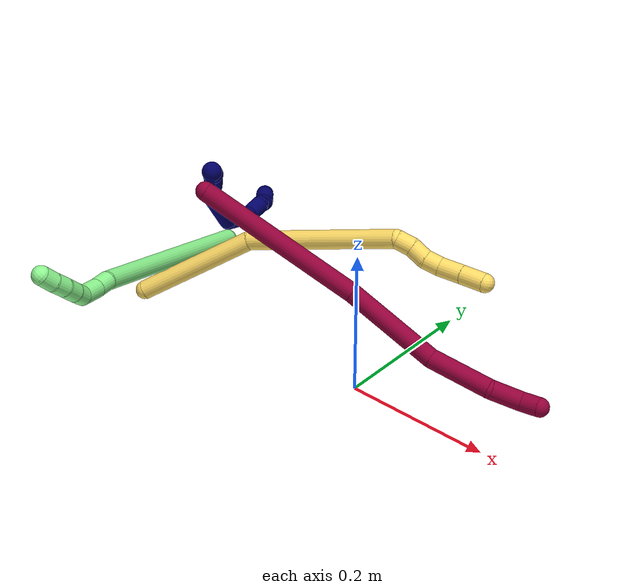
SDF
<sdf version="1.7">
 <world name="default">
  <model name="5">
   <static>0</static>
   <link name="5">
    <collision name="collision-cylinder-e_1_1_4">
     <pose>0.047104 0.058043 -0.031498 -2.06799 0.619586 -0.98701</pose>
     <geometry><cylinder><radius>0.0125</radius><length>0.162233</length></cylinder></geometry>
     <surface>
      <friction><ode><mu>1.16</mu><mu2>1.16</mu2><slip1>0</slip1><slip2>0</slip2></ode></friction>
      <contact><ode><kp>1e+06</kp><kd>1</kd><max_vel>0</max_vel><min_depth>0.001</min_depth></ode></contact>
     </surface>
    </collision>
    <visual name="visual-cylinder-e_1_1_4">
     <pose>0.047104 0.058043 -0.031498 -2.06799 0.619586 -0.98701</pose>
     <geometry><cylinder><radius>0.0125</radius><length>0.162233</length></cylinder></geometry>
     <material><ambient>1 0.858824 0.4 1</ambient></material>
    </visual>
    <collision name="collision-cylinder-e_2_4_5">
     <pose>0.182998 0.157939 -0.098223 -2.27045 1.01861 -1.75209</pose>
     <geometry><cylinder><radius>0.0125</radius><length>0.208578</length></cylinder></geometry>
     <surface>
      <friction><ode><mu>1.16</mu><mu2>1.16</mu2><slip1>0</slip1><slip2>0</slip2></ode></friction>
      <contact><ode><kp>1e+06</kp><kd>1</kd><max_vel>0</max_vel><min_depth>0.001</min_depth></ode></contact>
     </surface>
    </collision>
    <visual name="visual-cylinder-e_2_4_5">
     <pose>0.182998 0.157939 -0.098223 -2.27045 1.01861 -1.75209</pose>
     <geometry><cylinder><radius>0.0125</radius><length>0.208578</length></cylinder></geometry>
     <material><ambient>1 0.858824 0.4 1</ambient></material>
    </visual>
    <collision name="collision-cylinder-e_3_5_6">
     <pose>0.280124 0.198207 -0.140764 2.92828 0.839322 2.67056</pose>
     <geometry><cylinder><radius>0.0125</radius><length>0.022407</length></cylinder></geometry>
     <surface>
      <friction><ode><mu>1.16</mu><mu2>1.16</mu2><slip1>0</slip1><slip2>0</slip2></ode></friction>
      <contact><ode><kp>1e+06</kp><kd>1</kd><max_vel>0</max_vel><min_depth>0.001</min_depth></ode></contact>
     </surface>
    </collision>
    <visual name="visual-cylinder-e_3_5_6">
     <pose>0.280124 0.198207 -0.140764 2.92828 0.839322 2.67056</pose>
     <geometry><cylinder><radius>0.0125</radius><length>0.022407</length></cylinder></geometry>
     <material><ambient>1 0.858824 0.4 1</ambient></material>
    </visual>
    <collision name="collision-cylinder-e_4_6_7">
     <pose>0.29741 0.19252 -0.153304 2.47605 0.932077 1.93751</pose>
     <geometry><cylinder><radius>0.0125</radius><length>0.022291</length></cylinder></geometry>
     <surface>
      <friction><ode><mu>1.16</mu><mu2>1.16</mu2><slip1>0</slip1><slip2>0</slip2></ode></friction>
      <contact><ode><kp>1e+06</kp><kd>1</kd><max_vel>0</max_vel><min_depth>0.001</min_depth></ode></contact>
     </surface>
    </collision>
    <visual name="visual-cylinder-e_4_6_7">
     <pose>0.29741 0.19252 -0.153304 2.47605 0.932077 1.93751</pose>
     <geometry><cylinder><radius>0.0125</radius><length>0.022291</length></cylinder></geometry>
     <material><ambient>1 0.858824 0.4 1</ambient></material>
    </visual>
    <collision name="collision-cylinder-e_5_7_8">
     <pose>0.314755 0.187227 -0.164863 2.95582 0.916261 2.76818</pose>
     <geometry><cylinder><radius>0.0125</radius><length>0.021168</length></cylinder></geometry>
     <surface>
      <friction><ode><mu>1.16</mu><mu2>1.16</mu2><slip1>0</slip1><slip2>0</slip2></ode></friction>
      <contact><ode><kp>1e+06</kp><kd>1</kd><max_vel>0</max_vel><min_depth>0.001</min_depth></ode></contact>
     </surface>
    </collision>
    <visual name="visual-cylinder-e_5_7_8">
     <pose>0.314755 0.187227 -0.164863 2.95582 0.916261 2.76818</pose>
     <geometry><cylinder><radius>0.0125</radius><length>0.021168</length></cylinder></geometry>
     <material><ambient>1 0.858824 0.4 1</ambient></material>
    </visual>
    <collision name="collision-cylinder-e_6_8_9">
     <pose>0.338096 0.187446 -0.176599 -2.88641 1.21321 -2.77595</pose>
     <geometry><cylinder><radius>0.0125</radius><length>0.031907</length></cylinder></geometry>
     <surface>
      <friction><ode><mu>1.16</mu><mu2>1.16</mu2><slip1>0</slip1><slip2>0</slip2></ode></friction>
      <contact><ode><kp>1e+06</kp><kd>1</kd><max_vel>0</max_vel><min_depth>0.001</min_depth></ode></contact>
     </surface>
    </collision>
    <visual name="visual-cylinder-e_6_8_9">
     <pose>0.338096 0.187446 -0.176599 -2.88641 1.21321 -2.77595</pose>
     <geometry><cylinder><radius>0.0125</radius><length>0.031907</length></cylinder></geometry>
     <material><ambient>1 0.858824 0.4 1</ambient></material>
    </visual>
    <collision name="collision-cylinder-e_7_9_2">
     <pose>0.367812 0.19013 -0.18719 -2.90068 1.22381 -2.79999</pose>
     <geometry><cylinder><radius>0.0125</radius><length>0.031417</length></cylinder></geometry>
     <surface>
      <friction><ode><mu>1.16</mu><mu2>1.16</mu2><slip1>0</slip1><slip2>0</slip2></ode></friction>
      <contact><ode><kp>1e+06</kp><kd>1</kd><max_vel>0</max_vel><min_depth>0.001</min_depth></ode></contact>
     </surface>
    </collision>
    <visual name="visual-cylinder-e_7_9_2">
     <pose>0.367812 0.19013 -0.18719 -2.90068 1.22381 -2.79999</pose>
     <geometry><cylinder><radius>0.0125</radius><length>0.031417</length></cylinder></geometry>
     <material><ambient>1 0.858824 0.4 1</ambient></material>
    </visual>
    <collision name="collision-sphere-2">
     <pose>0.382585 0.191405 -0.192377 0 -0 0</pose>
     <geometry><sphere><radius>0.0125</radius></sphere></geometry>
     <surface>
      <friction><ode><mu>1.16</mu><mu2>1.16</mu2><slip1>0</slip1><slip2>0</slip2></ode></friction>
      <contact><ode><kp>1e+06</kp><kd>1</kd><max_vel>0</max_vel><min_depth>0.001</min_depth></ode></contact>
     </surface>
    </collision>
    <visual name="visual-sphere-2">
     <pose>0.382585 0.191405 -0.192377 0 -0 0</pose>
     <geometry><sphere><radius>0.0125</radius></sphere></geometry>
     <material><ambient>1 0.858824 0.4 1</ambient></material>
    </visual>
    <collision name="collision-sphere-9">
     <pose>0.35304 0.188856 -0.182002 0 -0 0</pose>
     <geometry><sphere><radius>0.0125</radius></sphere></geometry>
     <surface>
      <friction><ode><mu>1.16</mu><mu2>1.16</mu2><slip1>0</slip1><slip2>0</slip2></ode></friction>
      <contact><ode><kp>1e+06</kp><kd>1</kd><max_vel>0</max_vel><min_depth>0.001</min_depth></ode></contact>
     </surface>
    </collision>
    <visual name="visual-sphere-9">
     <pose>0.35304 0.188856 -0.182002 0 -0 0</pose>
     <geometry><sphere><radius>0.0125</radius></sphere></geometry>
     <material><ambient>1 0.858824 0.4 1</ambient></material>
    </visual>
    <collision name="collision-sphere-4">
     <pose>0.094208 0.116086 -0.062995 0 -0 0</pose>
     <geometry><sphere><radius>0.0125</radius></sphere></geometry>
     <surface>
      <friction><ode><mu>1.16</mu><mu2>1.16</mu2><slip1>0</slip1><slip2>0</slip2></ode></friction>
      <contact><ode><kp>1e+06</kp><kd>1</kd><max_vel>0</max_vel><min_depth>0.001</min_depth></ode></contact>
     </surface>
    </collision>
    <visual name="visual-sphere-4">
     <pose>0.094208 0.116086 -0.062995 0 -0 0</pose>
     <geometry><sphere><radius>0.0125</radius></sphere></geometry>
     <material><ambient>1 0.858824 0.4 1</ambient></material>
    </visual>
    <collision name="collision-sphere-1">
     <geometry><sphere><radius>0.0125</radius></sphere></geometry>
     <surface>
      <friction><ode><mu>1.16</mu><mu2>1.16</mu2><slip1>0</slip1><slip2>0</slip2></ode></friction>
      <contact><ode><kp>1e+06</kp><kd>1</kd><max_vel>0</max_vel><min_depth>0.001</min_depth></ode></contact>
     </surface>
    </collision>
    <visual name="visual-sphere-1">
     <geometry><sphere><radius>0.0125</radius></sphere></geometry>
     <material><ambient>1 0.858824 0.4 1</ambient></material>
    </visual>
    <collision name="collision-sphere-8">
     <pose>0.323151 0.186037 -0.171196 0 -0 0</pose>
     <geometry><sphere><radius>0.0125</radius></sphere></geometry>
     <surface>
      <friction><ode><mu>1.16</mu><mu2>1.16</mu2><slip1>0</slip1><slip2>0</slip2></ode></friction>
      <contact><ode><kp>1e+06</kp><kd>1</kd><max_vel>0</max_vel><min_depth>0.001</min_depth></ode></contact>
     </surface>
    </collision>
    <visual name="visual-sphere-8">
     <pose>0.323151 0.186037 -0.171196 0 -0 0</pose>
     <geometry><sphere><radius>0.0125</radius></sphere></geometry>
     <material><ambient>1 0.858824 0.4 1</ambient></material>
    </visual>
    <collision name="collision-sphere-5">
     <pose>0.271787 0.199791 -0.13345 0 -0 0</pose>
     <geometry><sphere><radius>0.0125</radius></sphere></geometry>
     <surface>
      <friction><ode><mu>1.16</mu><mu2>1.16</mu2><slip1>0</slip1><slip2>0</slip2></ode></friction>
      <contact><ode><kp>1e+06</kp><kd>1</kd><max_vel>0</max_vel><min_depth>0.001</min_depth></ode></contact>
     </surface>
    </collision>
    <visual name="visual-sphere-5">
     <pose>0.271787 0.199791 -0.13345 0 -0 0</pose>
     <geometry><sphere><radius>0.0125</radius></sphere></geometry>
     <material><ambient>1 0.858824 0.4 1</ambient></material>
    </visual>
    <collision name="collision-sphere-6">
     <pose>0.288462 0.196623 -0.148078 0 -0 0</pose>
     <geometry><sphere><radius>0.0125</radius></sphere></geometry>
     <surface>
      <friction><ode><mu>1.16</mu><mu2>1.16</mu2><slip1>0</slip1><slip2>0</slip2></ode></friction>
      <contact><ode><kp>1e+06</kp><kd>1</kd><max_vel>0</max_vel><min_depth>0.001</min_depth></ode></contact>
     </surface>
    </collision>
    <visual name="visual-sphere-6">
     <pose>0.288462 0.196623 -0.148078 0 -0 0</pose>
     <geometry><sphere><radius>0.0125</radius></sphere></geometry>
     <material><ambient>1 0.858824 0.4 1</ambient></material>
    </visual>
    <collision name="collision-sphere-7">
     <pose>0.306358 0.188417 -0.158531 0 -0 0</pose>
     <geometry><sphere><radius>0.0125</radius></sphere></geometry>
     <surface>
      <friction><ode><mu>1.16</mu><mu2>1.16</mu2><slip1>0</slip1><slip2>0</slip2></ode></friction>
      <contact><ode><kp>1e+06</kp><kd>1</kd><max_vel>0</max_vel><min_depth>0.001</min_depth></ode></contact>
     </surface>
    </collision>
    <visual name="visual-sphere-7">
     <pose>0.306358 0.188417 -0.158531 0 -0 0</pose>
     <geometry><sphere><radius>0.0125</radius></sphere></geometry>
     <material><ambient>1 0.858824 0.4 1</ambient></material>
    </visual>
    <inertial>
     <pose>0.175446 0.134018 -0.094348 0 -0 0</pose>
     <mass>0.5</mass>
     <inertia>
      <ixx>-0.000524</ixx>
      <ixy>0</ixy>
      <ixz>0</ixz>
      <iyy>2.5e-05</iyy>
      <iyz>0</iyz>
      <izz>-0.001453</izz>
     </inertia>
    </inertial>
   </link>
   <pose>-0.308703 -0.06476 0.04713 1.14616 -0.030011 -0.187992</pose>
  </model>
  <model name="7">
   <static>0</static>
   <link name="7">
    <collision name="collision-cylinder-e_1_1_4">
     <pose>1.6e-05 0.007731 -0.0161 -2.69391 0.000903 -0.003968</pose>
     <geometry><cylinder><radius>0.0125</radius><length>0.03572</length></cylinder></geometry>
     <surface>
      <friction><ode><mu>1.16</mu><mu2>1.16</mu2><slip1>0</slip1><slip2>0</slip2></ode></friction>
      <contact><ode><kp>1e+06</kp><kd>1</kd><max_vel>0</max_vel><min_depth>0.001</min_depth></ode></contact>
     </surface>
    </collision>
    <visual name="visual-cylinder-e_1_1_4">
     <pose>1.6e-05 0.007731 -0.0161 -2.69391 0.000903 -0.003968</pose>
     <geometry><cylinder><radius>0.0125</radius><length>0.03572</length></cylinder></geometry>
     <material><ambient>0.003922 0 0.403922 1</ambient></material>
    </visual>
    <collision name="collision-cylinder-e_2_4_5">
     <pose>0.004428 0.067296 -0.131903 -2.66217 0.039096 -0.159639</pose>
     <geometry><cylinder><radius>0.0125</radius><length>0.224914</length></cylinder></geometry>
     <surface>
      <friction><ode><mu>1.16</mu><mu2>1.16</mu2><slip1>0</slip1><slip2>0</slip2></ode></friction>
      <contact><ode><kp>1e+06</kp><kd>1</kd><max_vel>0</max_vel><min_depth>0.001</min_depth></ode></contact>
     </surface>
    </collision>
    <visual name="visual-cylinder-e_2_4_5">
     <pose>0.004428 0.067296 -0.131903 -2.66217 0.039096 -0.159639</pose>
     <geometry><cylinder><radius>0.0125</radius><length>0.224914</length></cylinder></geometry>
     <material><ambient>0.003922 0 0.403922 1</ambient></material>
    </visual>
    <collision name="collision-cylinder-e_3_5_6">
     <pose>0.008305 0.13312 -0.248617 -2.45333 -0.023517 0.065599</pose>
     <geometry><cylinder><radius>0.0125</radius><length>0.044064</length></cylinder></geometry>
     <surface>
      <friction><ode><mu>1.16</mu><mu2>1.16</mu2><slip1>0</slip1><slip2>0</slip2></ode></friction>
      <contact><ode><kp>1e+06</kp><kd>1</kd><max_vel>0</max_vel><min_depth>0.001</min_depth></ode></contact>
     </surface>
    </collision>
    <visual name="visual-cylinder-e_3_5_6">
     <pose>0.008305 0.13312 -0.248617 -2.45333 -0.023517 0.065599</pose>
     <geometry><cylinder><radius>0.0125</radius><length>0.044064</length></cylinder></geometry>
     <material><ambient>0.003922 0 0.403922 1</ambient></material>
    </visual>
    <collision name="collision-cylinder-e_4_6_7">
     <pose>-0.011673 0.164551 -0.291117 -2.5415 -0.562269 1.50194</pose>
     <geometry><cylinder><radius>0.0125</radius><length>0.073007</length></cylinder></geometry>
     <surface>
      <friction><ode><mu>1.16</mu><mu2>1.16</mu2><slip1>0</slip1><slip2>0</slip2></ode></friction>
      <contact><ode><kp>1e+06</kp><kd>1</kd><max_vel>0</max_vel><min_depth>0.001</min_depth></ode></contact>
     </surface>
    </collision>
    <visual name="visual-cylinder-e_4_6_7">
     <pose>-0.011673 0.164551 -0.291117 -2.5415 -0.562269 1.50194</pose>
     <geometry><cylinder><radius>0.0125</radius><length>0.073007</length></cylinder></geometry>
     <material><ambient>0.003922 0 0.403922 1</ambient></material>
    </visual>
    <collision name="collision-cylinder-e_5_7_8">
     <pose>-0.03395 0.181205 -0.327934 3.07225 -0.243111 -2.58828</pose>
     <geometry><cylinder><radius>0.0125</radius><length>0.023402</length></cylinder></geometry>
     <surface>
      <friction><ode><mu>1.16</mu><mu2>1.16</mu2><slip1>0</slip1><slip2>0</slip2></ode></friction>
      <contact><ode><kp>1e+06</kp><kd>1</kd><max_vel>0</max_vel><min_depth>0.001</min_depth></ode></contact>
     </surface>
    </collision>
    <visual name="visual-cylinder-e_5_7_8">
     <pose>-0.03395 0.181205 -0.327934 3.07225 -0.243111 -2.58828</pose>
     <geometry><cylinder><radius>0.0125</radius><length>0.023402</length></cylinder></geometry>
     <material><ambient>0.003922 0 0.403922 1</ambient></material>
    </visual>
    <collision name="collision-cylinder-e_6_8_9">
     <pose>-0.040383 0.17864 -0.354854 3.02801 -0.226505 -2.21455</pose>
     <geometry><cylinder><radius>0.0125</radius><length>0.032205</length></cylinder></geometry>
     <surface>
      <friction><ode><mu>1.16</mu><mu2>1.16</mu2><slip1>0</slip1><slip2>0</slip2></ode></friction>
      <contact><ode><kp>1e+06</kp><kd>1</kd><max_vel>0</max_vel><min_depth>0.001</min_depth></ode></contact>
     </surface>
    </collision>
    <visual name="visual-cylinder-e_6_8_9">
     <pose>-0.040383 0.17864 -0.354854 3.02801 -0.226505 -2.21455</pose>
     <geometry><cylinder><radius>0.0125</radius><length>0.032205</length></cylinder></geometry>
     <material><ambient>0.003922 0 0.403922 1</ambient></material>
    </visual>
    <collision name="collision-cylinder-e_7_9_10">
     <pose>-0.044228 0.170318 -0.381858 2.62103 -0.017397 -0.0653</pose>
     <geometry><cylinder><radius>0.0125</radius><length>0.026316</length></cylinder></geometry>
     <surface>
      <friction><ode><mu>1.16</mu><mu2>1.16</mu2><slip1>0</slip1><slip2>0</slip2></ode></friction>
      <contact><ode><kp>1e+06</kp><kd>1</kd><max_vel>0</max_vel><min_depth>0.001</min_depth></ode></contact>
     </surface>
    </collision>
    <visual name="visual-cylinder-e_7_9_10">
     <pose>-0.044228 0.170318 -0.381858 2.62103 -0.017397 -0.0653</pose>
     <geometry><cylinder><radius>0.0125</radius><length>0.026316</length></cylinder></geometry>
     <material><ambient>0.003922 0 0.403922 1</ambient></material>
    </visual>
    <collision name="collision-cylinder-e_8_10_11">
     <pose>-0.045014 0.164962 -0.403187 -3.02241 -0.055704 0.87372</pose>
     <geometry><cylinder><radius>0.0125</radius><length>0.020004</length></cylinder></geometry>
     <surface>
      <friction><ode><mu>1.16</mu><mu2>1.16</mu2><slip1>0</slip1><slip2>0</slip2></ode></friction>
      <contact><ode><kp>1e+06</kp><kd>1</kd><max_vel>0</max_vel><min_depth>0.001</min_depth></ode></contact>
     </surface>
    </collision>
    <visual name="visual-cylinder-e_8_10_11">
     <pose>-0.045014 0.164962 -0.403187 -3.02241 -0.055704 0.87372</pose>
     <geometry><cylinder><radius>0.0125</radius><length>0.020004</length></cylinder></geometry>
     <material><ambient>0.003922 0 0.403922 1</ambient></material>
    </visual>
    <collision name="collision-cylinder-e_9_11_2">
     <pose>-0.041461 0.165152 -0.422366 3.03432 0.415486 2.64279</pose>
     <geometry><cylinder><radius>0.0125</radius><length>0.020367</length></cylinder></geometry>
     <surface>
      <friction><ode><mu>1.16</mu><mu2>1.16</mu2><slip1>0</slip1><slip2>0</slip2></ode></friction>
      <contact><ode><kp>1e+06</kp><kd>1</kd><max_vel>0</max_vel><min_depth>0.001</min_depth></ode></contact>
     </surface>
    </collision>
    <visual name="visual-cylinder-e_9_11_2">
     <pose>-0.041461 0.165152 -0.422366 3.03432 0.415486 2.64279</pose>
     <geometry><cylinder><radius>0.0125</radius><length>0.020367</length></cylinder></geometry>
     <material><ambient>0.003922 0 0.403922 1</ambient></material>
    </visual>
    <collision name="collision-sphere-2">
     <pose>-0.03735 0.164154 -0.431629 0 -0 0</pose>
     <geometry><sphere><radius>0.0125</radius></sphere></geometry>
     <surface>
      <friction><ode><mu>1.16</mu><mu2>1.16</mu2><slip1>0</slip1><slip2>0</slip2></ode></friction>
      <contact><ode><kp>1e+06</kp><kd>1</kd><max_vel>0</max_vel><min_depth>0.001</min_depth></ode></contact>
     </surface>
    </collision>
    <visual name="visual-sphere-2">
     <pose>-0.03735 0.164154 -0.431629 0 -0 0</pose>
     <geometry><sphere><radius>0.0125</radius></sphere></geometry>
     <material><ambient>0.003922 0 0.403922 1</ambient></material>
    </visual>
    <collision name="collision-sphere-11">
     <pose>-0.045571 0.166149 -0.413103 0 -0 0</pose>
     <geometry><sphere><radius>0.0125</radius></sphere></geometry>
     <surface>
      <friction><ode><mu>1.16</mu><mu2>1.16</mu2><slip1>0</slip1><slip2>0</slip2></ode></friction>
      <contact><ode><kp>1e+06</kp><kd>1</kd><max_vel>0</max_vel><min_depth>0.001</min_depth></ode></contact>
     </surface>
    </collision>
    <visual name="visual-sphere-11">
     <pose>-0.045571 0.166149 -0.413103 0 -0 0</pose>
     <geometry><sphere><radius>0.0125</radius></sphere></geometry>
     <material><ambient>0.003922 0 0.403922 1</ambient></material>
    </visual>
    <collision name="collision-sphere-10">
     <pose>-0.044457 0.163774 -0.393271 0 -0 0</pose>
     <geometry><sphere><radius>0.0125</radius></sphere></geometry>
     <surface>
      <friction><ode><mu>1.16</mu><mu2>1.16</mu2><slip1>0</slip1><slip2>0</slip2></ode></friction>
      <contact><ode><kp>1e+06</kp><kd>1</kd><max_vel>0</max_vel><min_depth>0.001</min_depth></ode></contact>
     </surface>
    </collision>
    <visual name="visual-sphere-10">
     <pose>-0.044457 0.163774 -0.393271 0 -0 0</pose>
     <geometry><sphere><radius>0.0125</radius></sphere></geometry>
     <material><ambient>0.003922 0 0.403922 1</ambient></material>
    </visual>
    <collision name="collision-sphere-9">
     <pose>-0.043999 0.176861 -0.370444 0 -0 0</pose>
     <geometry><sphere><radius>0.0125</radius></sphere></geometry>
     <surface>
      <friction><ode><mu>1.16</mu><mu2>1.16</mu2><slip1>0</slip1><slip2>0</slip2></ode></friction>
      <contact><ode><kp>1e+06</kp><kd>1</kd><max_vel>0</max_vel><min_depth>0.001</min_depth></ode></contact>
     </surface>
    </collision>
    <visual name="visual-sphere-9">
     <pose>-0.043999 0.176861 -0.370444 0 -0 0</pose>
     <geometry><sphere><radius>0.0125</radius></sphere></geometry>
     <material><ambient>0.003922 0 0.403922 1</ambient></material>
    </visual>
    <collision name="collision-sphere-4">
     <pose>3.2e-05 0.015463 -0.0322 0 -0 0</pose>
     <geometry><sphere><radius>0.0125</radius></sphere></geometry>
     <surface>
      <friction><ode><mu>1.16</mu><mu2>1.16</mu2><slip1>0</slip1><slip2>0</slip2></ode></friction>
      <contact><ode><kp>1e+06</kp><kd>1</kd><max_vel>0</max_vel><min_depth>0.001</min_depth></ode></contact>
     </surface>
    </collision>
    <visual name="visual-sphere-4">
     <pose>3.2e-05 0.015463 -0.0322 0 -0 0</pose>
     <geometry><sphere><radius>0.0125</radius></sphere></geometry>
     <material><ambient>0.003922 0 0.403922 1</ambient></material>
    </visual>
    <collision name="collision-sphere-1">
     <geometry><sphere><radius>0.0125</radius></sphere></geometry>
     <surface>
      <friction><ode><mu>1.16</mu><mu2>1.16</mu2><slip1>0</slip1><slip2>0</slip2></ode></friction>
      <contact><ode><kp>1e+06</kp><kd>1</kd><max_vel>0</max_vel><min_depth>0.001</min_depth></ode></contact>
     </surface>
    </collision>
    <visual name="visual-sphere-1">
     <geometry><sphere><radius>0.0125</radius></sphere></geometry>
     <material><ambient>0.003922 0 0.403922 1</ambient></material>
    </visual>
    <collision name="collision-sphere-8">
     <pose>-0.036767 0.180418 -0.339264 0 -0 0</pose>
     <geometry><sphere><radius>0.0125</radius></sphere></geometry>
     <surface>
      <friction><ode><mu>1.16</mu><mu2>1.16</mu2><slip1>0</slip1><slip2>0</slip2></ode></friction>
      <contact><ode><kp>1e+06</kp><kd>1</kd><max_vel>0</max_vel><min_depth>0.001</min_depth></ode></contact>
     </surface>
    </collision>
    <visual name="visual-sphere-8">
     <pose>-0.036767 0.180418 -0.339264 0 -0 0</pose>
     <geometry><sphere><radius>0.0125</radius></sphere></geometry>
     <material><ambient>0.003922 0 0.403922 1</ambient></material>
    </visual>
    <collision name="collision-sphere-5">
     <pose>0.008823 0.119129 -0.231605 0 -0 0</pose>
     <geometry><sphere><radius>0.0125</radius></sphere></geometry>
     <surface>
      <friction><ode><mu>1.16</mu><mu2>1.16</mu2><slip1>0</slip1><slip2>0</slip2></ode></friction>
      <contact><ode><kp>1e+06</kp><kd>1</kd><max_vel>0</max_vel><min_depth>0.001</min_depth></ode></contact>
     </surface>
    </collision>
    <visual name="visual-sphere-5">
     <pose>0.008823 0.119129 -0.231605 0 -0 0</pose>
     <geometry><sphere><radius>0.0125</radius></sphere></geometry>
     <material><ambient>0.003922 0 0.403922 1</ambient></material>
    </visual>
    <collision name="collision-sphere-6">
     <pose>0.007787 0.147111 -0.265629 0 -0 0</pose>
     <geometry><sphere><radius>0.0125</radius></sphere></geometry>
     <surface>
      <friction><ode><mu>1.16</mu><mu2>1.16</mu2><slip1>0</slip1><slip2>0</slip2></ode></friction>
      <contact><ode><kp>1e+06</kp><kd>1</kd><max_vel>0</max_vel><min_depth>0.001</min_depth></ode></contact>
     </surface>
    </collision>
    <visual name="visual-sphere-6">
     <pose>0.007787 0.147111 -0.265629 0 -0 0</pose>
     <geometry><sphere><radius>0.0125</radius></sphere></geometry>
     <material><ambient>0.003922 0 0.403922 1</ambient></material>
    </visual>
    <collision name="collision-sphere-7">
     <pose>-0.031134 0.181992 -0.316605 0 -0 0</pose>
     <geometry><sphere><radius>0.0125</radius></sphere></geometry>
     <surface>
      <friction><ode><mu>1.16</mu><mu2>1.16</mu2><slip1>0</slip1><slip2>0</slip2></ode></friction>
      <contact><ode><kp>1e+06</kp><kd>1</kd><max_vel>0</max_vel><min_depth>0.001</min_depth></ode></contact>
     </surface>
    </collision>
    <visual name="visual-sphere-7">
     <pose>-0.031134 0.181992 -0.316605 0 -0 0</pose>
     <geometry><sphere><radius>0.0125</radius></sphere></geometry>
     <material><ambient>0.003922 0 0.403922 1</ambient></material>
    </visual>
    <inertial>
     <pose>-0.008987 0.108861 -0.216539 0 -0 0</pose>
     <mass>0.5</mass>
     <inertia>
      <ixx>0.000831</ixx>
      <ixy>0</ixy>
      <ixz>0</ixz>
      <iyy>-0.000947</iyy>
      <iyz>0</iyz>
      <izz>-0.000515</izz>
     </inertia>
    </inertial>
   </link>
   <pose>-0.183801 -0.061822 0.277254 -1.25444 -0.579675 -2.9204</pose>
  </model>
  <model name="8">
   <static>0</static>
   <link name="8">
    <collision name="collision-cylinder-e_1_1_4">
     <pose>0.055804 0.018761 -0.093929 -2.94446 0.527526 -2.43956</pose>
     <geometry><cylinder><radius>0.0125</radius><length>0.221709</length></cylinder></geometry>
     <surface>
      <friction><ode><mu>1.16</mu><mu2>1.16</mu2><slip1>0</slip1><slip2>0</slip2></ode></friction>
      <contact><ode><kp>1e+06</kp><kd>1</kd><max_vel>0</max_vel><min_depth>0.001</min_depth></ode></contact>
     </surface>
    </collision>
    <visual name="visual-cylinder-e_1_1_4">
     <pose>0.055804 0.018761 -0.093929 -2.94446 0.527526 -2.43956</pose>
     <geometry><cylinder><radius>0.0125</radius><length>0.221709</length></cylinder></geometry>
     <material><ambient>0.584314 0 0.227451 1</ambient></material>
    </visual>
    <collision name="collision-cylinder-e_2_4_5">
     <pose>0.146737 0.040017 -0.240766 -3.09446 0.585622 -2.98554</pose>
     <geometry><cylinder><radius>0.0125</radius><length>0.127114</length></cylinder></geometry>
     <surface>
      <friction><ode><mu>1.16</mu><mu2>1.16</mu2><slip1>0</slip1><slip2>0</slip2></ode></friction>
      <contact><ode><kp>1e+06</kp><kd>1</kd><max_vel>0</max_vel><min_depth>0.001</min_depth></ode></contact>
     </surface>
    </collision>
    <visual name="visual-cylinder-e_2_4_5">
     <pose>0.146737 0.040017 -0.240766 -3.09446 0.585622 -2.98554</pose>
     <geometry><cylinder><radius>0.0125</radius><length>0.127114</length></cylinder></geometry>
     <material><ambient>0.584314 0 0.227451 1</ambient></material>
    </visual>
    <collision name="collision-cylinder-e_3_5_6">
     <pose>0.214601 0.046076 -0.319479 -3.00436 0.898634 -2.85847</pose>
     <geometry><cylinder><radius>0.0125</radius><length>0.083671</length></cylinder></geometry>
     <surface>
      <friction><ode><mu>1.16</mu><mu2>1.16</mu2><slip1>0</slip1><slip2>0</slip2></ode></friction>
      <contact><ode><kp>1e+06</kp><kd>1</kd><max_vel>0</max_vel><min_depth>0.001</min_depth></ode></contact>
     </surface>
    </collision>
    <visual name="visual-cylinder-e_3_5_6">
     <pose>0.214601 0.046076 -0.319479 -3.00436 0.898634 -2.85847</pose>
     <geometry><cylinder><radius>0.0125</radius><length>0.083671</length></cylinder></geometry>
     <material><ambient>0.584314 0 0.227451 1</ambient></material>
    </visual>
    <collision name="collision-cylinder-e_4_6_7">
     <pose>0.257097 0.058454 -0.361609 -2.64651 0.484324 -1.54793</pose>
     <geometry><cylinder><radius>0.0125</radius><length>0.041926</length></cylinder></geometry>
     <surface>
      <friction><ode><mu>1.16</mu><mu2>1.16</mu2><slip1>0</slip1><slip2>0</slip2></ode></friction>
      <contact><ode><kp>1e+06</kp><kd>1</kd><max_vel>0</max_vel><min_depth>0.001</min_depth></ode></contact>
     </surface>
    </collision>
    <visual name="visual-cylinder-e_4_6_7">
     <pose>0.257097 0.058454 -0.361609 -2.64651 0.484324 -1.54793</pose>
     <geometry><cylinder><radius>0.0125</radius><length>0.041926</length></cylinder></geometry>
     <material><ambient>0.584314 0 0.227451 1</ambient></material>
    </visual>
    <collision name="collision-cylinder-e_5_7_2">
     <pose>0.278301 0.0689 -0.383408 -2.85186 1.10777 -2.67829</pose>
     <geometry><cylinder><radius>0.0125</radius><length>0.02558</length></cylinder></geometry>
     <surface>
      <friction><ode><mu>1.16</mu><mu2>1.16</mu2><slip1>0</slip1><slip2>0</slip2></ode></friction>
      <contact><ode><kp>1e+06</kp><kd>1</kd><max_vel>0</max_vel><min_depth>0.001</min_depth></ode></contact>
     </surface>
    </collision>
    <visual name="visual-cylinder-e_5_7_2">
     <pose>0.278301 0.0689 -0.383408 -2.85186 1.10777 -2.67829</pose>
     <geometry><cylinder><radius>0.0125</radius><length>0.02558</length></cylinder></geometry>
     <material><ambient>0.584314 0 0.227451 1</ambient></material>
    </visual>
    <collision name="collision-sphere-2">
     <pose>0.289744 0.070532 -0.388882 0 -0 0</pose>
     <geometry><sphere><radius>0.0125</radius></sphere></geometry>
     <surface>
      <friction><ode><mu>1.16</mu><mu2>1.16</mu2><slip1>0</slip1><slip2>0</slip2></ode></friction>
      <contact><ode><kp>1e+06</kp><kd>1</kd><max_vel>0</max_vel><min_depth>0.001</min_depth></ode></contact>
     </surface>
    </collision>
    <visual name="visual-sphere-2">
     <pose>0.289744 0.070532 -0.388882 0 -0 0</pose>
     <geometry><sphere><radius>0.0125</radius></sphere></geometry>
     <material><ambient>0.584314 0 0.227451 1</ambient></material>
    </visual>
    <collision name="collision-sphere-7">
     <pose>0.266858 0.067268 -0.377933 0 -0 0</pose>
     <geometry><sphere><radius>0.0125</radius></sphere></geometry>
     <surface>
      <friction><ode><mu>1.16</mu><mu2>1.16</mu2><slip1>0</slip1><slip2>0</slip2></ode></friction>
      <contact><ode><kp>1e+06</kp><kd>1</kd><max_vel>0</max_vel><min_depth>0.001</min_depth></ode></contact>
     </surface>
    </collision>
    <visual name="visual-sphere-7">
     <pose>0.266858 0.067268 -0.377933 0 -0 0</pose>
     <geometry><sphere><radius>0.0125</radius></sphere></geometry>
     <material><ambient>0.584314 0 0.227451 1</ambient></material>
    </visual>
    <collision name="collision-sphere-6">
     <pose>0.247336 0.049639 -0.345284 0 -0 0</pose>
     <geometry><sphere><radius>0.0125</radius></sphere></geometry>
     <surface>
      <friction><ode><mu>1.16</mu><mu2>1.16</mu2><slip1>0</slip1><slip2>0</slip2></ode></friction>
      <contact><ode><kp>1e+06</kp><kd>1</kd><max_vel>0</max_vel><min_depth>0.001</min_depth></ode></contact>
     </surface>
    </collision>
    <visual name="visual-sphere-6">
     <pose>0.247336 0.049639 -0.345284 0 -0 0</pose>
     <geometry><sphere><radius>0.0125</radius></sphere></geometry>
     <material><ambient>0.584314 0 0.227451 1</ambient></material>
    </visual>
    <collision name="collision-sphere-5">
     <pose>0.181866 0.042512 -0.293674 0 -0 0</pose>
     <geometry><sphere><radius>0.0125</radius></sphere></geometry>
     <surface>
      <friction><ode><mu>1.16</mu><mu2>1.16</mu2><slip1>0</slip1><slip2>0</slip2></ode></friction>
      <contact><ode><kp>1e+06</kp><kd>1</kd><max_vel>0</max_vel><min_depth>0.001</min_depth></ode></contact>
     </surface>
    </collision>
    <visual name="visual-sphere-5">
     <pose>0.181866 0.042512 -0.293674 0 -0 0</pose>
     <geometry><sphere><radius>0.0125</radius></sphere></geometry>
     <material><ambient>0.584314 0 0.227451 1</ambient></material>
    </visual>
    <collision name="collision-sphere-1">
     <geometry><sphere><radius>0.0125</radius></sphere></geometry>
     <surface>
      <friction><ode><mu>1.16</mu><mu2>1.16</mu2><slip1>0</slip1><slip2>0</slip2></ode></friction>
      <contact><ode><kp>1e+06</kp><kd>1</kd><max_vel>0</max_vel><min_depth>0.001</min_depth></ode></contact>
     </surface>
    </collision>
    <visual name="visual-sphere-1">
     <geometry><sphere><radius>0.0125</radius></sphere></geometry>
     <material><ambient>0.584314 0 0.227451 1</ambient></material>
    </visual>
    <collision name="collision-sphere-4">
     <pose>0.111608 0.037521 -0.187858 0 -0 0</pose>
     <geometry><sphere><radius>0.0125</radius></sphere></geometry>
     <surface>
      <friction><ode><mu>1.16</mu><mu2>1.16</mu2><slip1>0</slip1><slip2>0</slip2></ode></friction>
      <contact><ode><kp>1e+06</kp><kd>1</kd><max_vel>0</max_vel><min_depth>0.001</min_depth></ode></contact>
     </surface>
    </collision>
    <visual name="visual-sphere-4">
     <pose>0.111608 0.037521 -0.187858 0 -0 0</pose>
     <geometry><sphere><radius>0.0125</radius></sphere></geometry>
     <material><ambient>0.584314 0 0.227451 1</ambient></material>
    </visual>
    <inertial>
     <pose>0.133757 0.034629 -0.206258 0 -0 0</pose>
     <mass>0.5</mass>
     <inertia>
      <ixx>-0.00131</ixx>
      <ixy>0</ixy>
      <ixz>0</ixz>
      <iyy>0.000429</iyy>
      <iyz>0</iyz>
      <izz>-0.000806</izz>
     </inertia>
    </inertial>
   </link>
   <pose>-0.191057 -0.066637 0.248282 0.254405 -0.452584 -0.083194</pose>
  </model>
  <model name="13">
   <static>0</static>
   <link name="13">
    <collision name="collision-cylinder-e_1_1_4">
     <pose>0.026618 -0.16652 0.062493 1.21177 0.148556 0.10302</pose>
     <geometry><cylinder><radius>0.0125</radius><length>0.359683</length></cylinder></geometry>
     <surface>
      <friction><ode><mu>1.16</mu><mu2>1.16</mu2><slip1>0</slip1><slip2>0</slip2></ode></friction>
      <contact><ode><kp>1e+06</kp><kd>1</kd><max_vel>0</max_vel><min_depth>0.001</min_depth></ode></contact>
     </surface>
    </collision>
    <visual name="visual-cylinder-e_1_1_4">
     <pose>0.026618 -0.16652 0.062493 1.21177 0.148556 0.10302</pose>
     <geometry><cylinder><radius>0.0125</radius><length>0.359683</length></cylinder></geometry>
     <material><ambient>0.564706 0.984314 0.572549 1</ambient></material>
    </visual>
    <collision name="collision-cylinder-e_2_4_5">
     <pose>0.053917 -0.343657 0.131858 0.996308 0.053693 0.029209</pose>
     <geometry><cylinder><radius>0.0125</radius><length>0.025329</length></cylinder></geometry>
     <surface>
      <friction><ode><mu>1.16</mu><mu2>1.16</mu2><slip1>0</slip1><slip2>0</slip2></ode></friction>
      <contact><ode><kp>1e+06</kp><kd>1</kd><max_vel>0</max_vel><min_depth>0.001</min_depth></ode></contact>
     </surface>
    </collision>
    <visual name="visual-cylinder-e_2_4_5">
     <pose>0.053917 -0.343657 0.131858 0.996308 0.053693 0.029209</pose>
     <geometry><cylinder><radius>0.0125</radius><length>0.025329</length></cylinder></geometry>
     <material><ambient>0.564706 0.984314 0.572549 1</ambient></material>
    </visual>
    <collision name="collision-cylinder-e_3_5_6">
     <pose>0.056361 -0.368066 0.146195 1.07471 0.112028 0.066796</pose>
     <geometry><cylinder><radius>0.0125</radius><length>0.031566</length></cylinder></geometry>
     <surface>
      <friction><ode><mu>1.16</mu><mu2>1.16</mu2><slip1>0</slip1><slip2>0</slip2></ode></friction>
      <contact><ode><kp>1e+06</kp><kd>1</kd><max_vel>0</max_vel><min_depth>0.001</min_depth></ode></contact>
     </surface>
    </collision>
    <visual name="visual-cylinder-e_3_5_6">
     <pose>0.056361 -0.368066 0.146195 1.07471 0.112028 0.066796</pose>
     <geometry><cylinder><radius>0.0125</radius><length>0.031566</length></cylinder></geometry>
     <material><ambient>0.564706 0.984314 0.572549 1</ambient></material>
    </visual>
    <collision name="collision-cylinder-e_4_6_7">
     <pose>0.062216 -0.391406 0.154389 1.49466 0.403812 0.374896</pose>
     <geometry><cylinder><radius>0.0125</radius><length>0.020824</length></cylinder></geometry>
     <surface>
      <friction><ode><mu>1.16</mu><mu2>1.16</mu2><slip1>0</slip1><slip2>0</slip2></ode></friction>
      <contact><ode><kp>1e+06</kp><kd>1</kd><max_vel>0</max_vel><min_depth>0.001</min_depth></ode></contact>
     </surface>
    </collision>
    <visual name="visual-cylinder-e_4_6_7">
     <pose>0.062216 -0.391406 0.154389 1.49466 0.403812 0.374896</pose>
     <geometry><cylinder><radius>0.0125</radius><length>0.020824</length></cylinder></geometry>
     <material><ambient>0.564706 0.984314 0.572549 1</ambient></material>
    </visual>
    <collision name="collision-cylinder-e_5_7_8">
     <pose>0.071828 -0.410598 0.155929 1.48686 0.518354 0.478213</pose>
     <geometry><cylinder><radius>0.0125</radius><length>0.022287</length></cylinder></geometry>
     <surface>
      <friction><ode><mu>1.16</mu><mu2>1.16</mu2><slip1>0</slip1><slip2>0</slip2></ode></friction>
      <contact><ode><kp>1e+06</kp><kd>1</kd><max_vel>0</max_vel><min_depth>0.001</min_depth></ode></contact>
     </surface>
    </collision>
    <visual name="visual-cylinder-e_5_7_8">
     <pose>0.071828 -0.410598 0.155929 1.48686 0.518354 0.478213</pose>
     <geometry><cylinder><radius>0.0125</radius><length>0.022287</length></cylinder></geometry>
     <material><ambient>0.564706 0.984314 0.572549 1</ambient></material>
    </visual>
    <collision name="collision-cylinder-e_6_8_9">
     <pose>0.083636 -0.427962 0.158398 1.35918 0.672474 0.550461</pose>
     <geometry><cylinder><radius>0.0125</radius><length>0.020184</length></cylinder></geometry>
     <surface>
      <friction><ode><mu>1.16</mu><mu2>1.16</mu2><slip1>0</slip1><slip2>0</slip2></ode></friction>
      <contact><ode><kp>1e+06</kp><kd>1</kd><max_vel>0</max_vel><min_depth>0.001</min_depth></ode></contact>
     </surface>
    </collision>
    <visual name="visual-cylinder-e_6_8_9">
     <pose>0.083636 -0.427962 0.158398 1.35918 0.672474 0.550461</pose>
     <geometry><cylinder><radius>0.0125</radius><length>0.020184</length></cylinder></geometry>
     <material><ambient>0.564706 0.984314 0.572549 1</ambient></material>
    </visual>
    <collision name="collision-cylinder-e_7_9_2">
     <pose>0.097401 -0.44226 0.1615 1.3548 0.837637 0.68769</pose>
     <geometry><cylinder><radius>0.0125</radius><length>0.020128</length></cylinder></geometry>
     <surface>
      <friction><ode><mu>1.16</mu><mu2>1.16</mu2><slip1>0</slip1><slip2>0</slip2></ode></friction>
      <contact><ode><kp>1e+06</kp><kd>1</kd><max_vel>0</max_vel><min_depth>0.001</min_depth></ode></contact>
     </surface>
    </collision>
    <visual name="visual-cylinder-e_7_9_2">
     <pose>0.097401 -0.44226 0.1615 1.3548 0.837637 0.68769</pose>
     <geometry><cylinder><radius>0.0125</radius><length>0.020128</length></cylinder></geometry>
     <material><ambient>0.564706 0.984314 0.572549 1</ambient></material>
    </visual>
    <collision name="collision-sphere-2">
     <pose>0.104879 -0.448838 0.162944 0 -0 0</pose>
     <geometry><sphere><radius>0.0125</radius></sphere></geometry>
     <surface>
      <friction><ode><mu>1.16</mu><mu2>1.16</mu2><slip1>0</slip1><slip2>0</slip2></ode></friction>
      <contact><ode><kp>1e+06</kp><kd>1</kd><max_vel>0</max_vel><min_depth>0.001</min_depth></ode></contact>
     </surface>
    </collision>
    <visual name="visual-sphere-2">
     <pose>0.104879 -0.448838 0.162944 0 -0 0</pose>
     <geometry><sphere><radius>0.0125</radius></sphere></geometry>
     <material><ambient>0.564706 0.984314 0.572549 1</ambient></material>
    </visual>
    <collision name="collision-sphere-9">
     <pose>0.089922 -0.435681 0.160057 0 -0 0</pose>
     <geometry><sphere><radius>0.0125</radius></sphere></geometry>
     <surface>
      <friction><ode><mu>1.16</mu><mu2>1.16</mu2><slip1>0</slip1><slip2>0</slip2></ode></friction>
      <contact><ode><kp>1e+06</kp><kd>1</kd><max_vel>0</max_vel><min_depth>0.001</min_depth></ode></contact>
     </surface>
    </collision>
    <visual name="visual-sphere-9">
     <pose>0.089922 -0.435681 0.160057 0 -0 0</pose>
     <geometry><sphere><radius>0.0125</radius></sphere></geometry>
     <material><ambient>0.564706 0.984314 0.572549 1</ambient></material>
    </visual>
    <collision name="collision-sphere-4">
     <pose>0.053237 -0.333041 0.124986 0 -0 0</pose>
     <geometry><sphere><radius>0.0125</radius></sphere></geometry>
     <surface>
      <friction><ode><mu>1.16</mu><mu2>1.16</mu2><slip1>0</slip1><slip2>0</slip2></ode></friction>
      <contact><ode><kp>1e+06</kp><kd>1</kd><max_vel>0</max_vel><min_depth>0.001</min_depth></ode></contact>
     </surface>
    </collision>
    <visual name="visual-sphere-4">
     <pose>0.053237 -0.333041 0.124986 0 -0 0</pose>
     <geometry><sphere><radius>0.0125</radius></sphere></geometry>
     <material><ambient>0.564706 0.984314 0.572549 1</ambient></material>
    </visual>
    <collision name="collision-sphere-1">
     <geometry><sphere><radius>0.0125</radius></sphere></geometry>
     <surface>
      <friction><ode><mu>1.16</mu><mu2>1.16</mu2><slip1>0</slip1><slip2>0</slip2></ode></friction>
      <contact><ode><kp>1e+06</kp><kd>1</kd><max_vel>0</max_vel><min_depth>0.001</min_depth></ode></contact>
     </surface>
    </collision>
    <visual name="visual-sphere-1">
     <geometry><sphere><radius>0.0125</radius></sphere></geometry>
     <material><ambient>0.564706 0.984314 0.572549 1</ambient></material>
    </visual>
    <collision name="collision-sphere-8">
     <pose>0.077349 -0.420244 0.15674 0 -0 0</pose>
     <geometry><sphere><radius>0.0125</radius></sphere></geometry>
     <surface>
      <friction><ode><mu>1.16</mu><mu2>1.16</mu2><slip1>0</slip1><slip2>0</slip2></ode></friction>
      <contact><ode><kp>1e+06</kp><kd>1</kd><max_vel>0</max_vel><min_depth>0.001</min_depth></ode></contact>
     </surface>
    </collision>
    <visual name="visual-sphere-8">
     <pose>0.077349 -0.420244 0.15674 0 -0 0</pose>
     <geometry><sphere><radius>0.0125</radius></sphere></geometry>
     <material><ambient>0.564706 0.984314 0.572549 1</ambient></material>
    </visual>
    <collision name="collision-sphere-5">
     <pose>0.054596 -0.354272 0.13873 0 -0 0</pose>
     <geometry><sphere><radius>0.0125</radius></sphere></geometry>
     <surface>
      <friction><ode><mu>1.16</mu><mu2>1.16</mu2><slip1>0</slip1><slip2>0</slip2></ode></friction>
      <contact><ode><kp>1e+06</kp><kd>1</kd><max_vel>0</max_vel><min_depth>0.001</min_depth></ode></contact>
     </surface>
    </collision>
    <visual name="visual-sphere-5">
     <pose>0.054596 -0.354272 0.13873 0 -0 0</pose>
     <geometry><sphere><radius>0.0125</radius></sphere></geometry>
     <material><ambient>0.564706 0.984314 0.572549 1</ambient></material>
    </visual>
    <collision name="collision-sphere-6">
     <pose>0.058125 -0.381859 0.153661 0 -0 0</pose>
     <geometry><sphere><radius>0.0125</radius></sphere></geometry>
     <surface>
      <friction><ode><mu>1.16</mu><mu2>1.16</mu2><slip1>0</slip1><slip2>0</slip2></ode></friction>
      <contact><ode><kp>1e+06</kp><kd>1</kd><max_vel>0</max_vel><min_depth>0.001</min_depth></ode></contact>
     </surface>
    </collision>
    <visual name="visual-sphere-6">
     <pose>0.058125 -0.381859 0.153661 0 -0 0</pose>
     <geometry><sphere><radius>0.0125</radius></sphere></geometry>
     <material><ambient>0.564706 0.984314 0.572549 1</ambient></material>
    </visual>
    <collision name="collision-sphere-7">
     <pose>0.066307 -0.400953 0.155117 0 -0 0</pose>
     <geometry><sphere><radius>0.0125</radius></sphere></geometry>
     <surface>
      <friction><ode><mu>1.16</mu><mu2>1.16</mu2><slip1>0</slip1><slip2>0</slip2></ode></friction>
      <contact><ode><kp>1e+06</kp><kd>1</kd><max_vel>0</max_vel><min_depth>0.001</min_depth></ode></contact>
     </surface>
    </collision>
    <visual name="visual-sphere-7">
     <pose>0.066307 -0.400953 0.155117 0 -0 0</pose>
     <geometry><sphere><radius>0.0125</radius></sphere></geometry>
     <material><ambient>0.564706 0.984314 0.572549 1</ambient></material>
    </visual>
    <inertial>
     <pose>0.038528 -0.230117 0.08714 0 -0 0</pose>
     <mass>0.5</mass>
     <inertia>
      <ixx>0.004246</ixx>
      <ixy>0</ixy>
      <ixz>0</ixz>
      <iyy>0.001785</iyy>
      <iyz>0</iyz>
      <izz>0.003047</izz>
     </inertia>
    </inertial>
   </link>
   <pose>-0.348994 0.139281 0.012253 -2.42628 -0.616625 -2.94192</pose>
  </model>
 </world>
</sdf>
